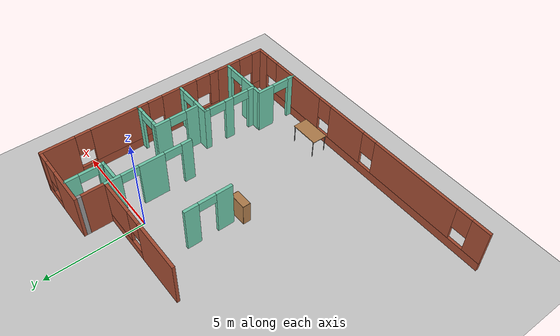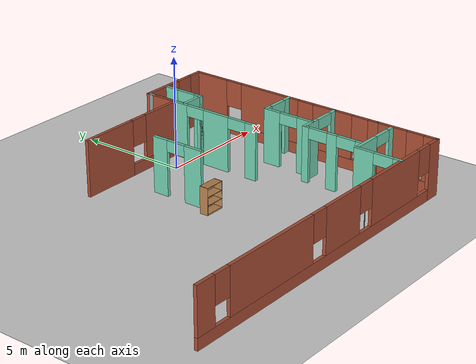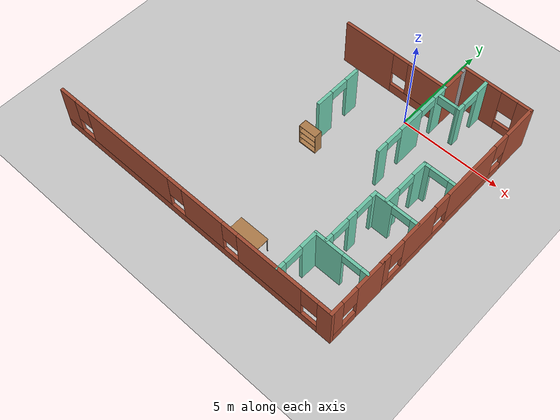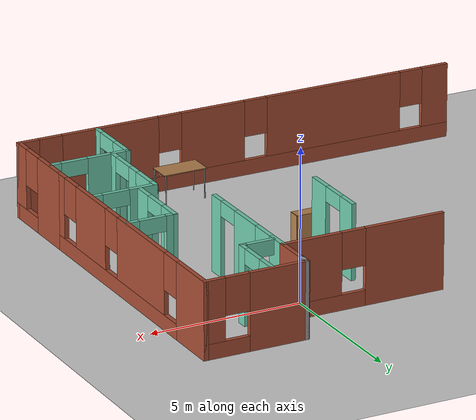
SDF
<sdf version="1.6">
 <world name="default">
  <model name="ground_plane">
   <static>1</static>
   <link name="link">
    <collision name="collision">
     <geometry><plane><normal>0 0 1</normal><size>100 100</size></plane></geometry>
     <surface>
      <contact><collide_bitmask>65535</collide_bitmask></contact>
      <friction><ode><mu>100</mu><mu2>50</mu2></ode></friction>
     </surface>
    </collision>
    <visual name="visual">
     <cast_shadows>0</cast_shadows>
     <geometry><plane><normal>0 0 1</normal><size>100 100</size></plane></geometry>
     <material>
      <script><uri>file://media/materials/scripts/gazebo.material</uri><name>Gazebo/Grey</name></script>
     </material>
    </visual>
   </link>
  </model>
  <model name="my_apartment">
   <pose>-3.10653 -3.79856 0 0 -0 0</pose>
   <link name="Wall_0">
    <pose>1.52918 4.775 0 0 -0 0</pose>
    <visual name="Wall_0_Visual_0">
     <pose>-1.4096 0 1.25 0 -0 0</pose>
     <geometry><box><size>2.6808 0.15 2.5</size></box></geometry>
     <material>
      <script><uri>file://media/materials/scripts/gazebo.material</uri><name>Gazebo/Bricks</name></script>
      <ambient>0.435294 0.796078 0.67451 1</ambient>
     </material>
     <meta><layer>0</layer></meta>
    </visual>
    <collision name="Wall_0_Collision_0">
     <geometry><box><size>2.6808 0.15 2.5</size></box></geometry>
     <pose>-1.4096 0 1.25 0 -0 0</pose>
    </collision>
    <visual name="Wall_0_Visual_1">
     <pose>1.3404 0 0.25 0 -0 0</pose>
     <geometry><box><size>2.8192 0.15 0.5</size></box></geometry>
     <material>
      <script><uri>file://media/materials/scripts/gazebo.material</uri><name>Gazebo/Bricks</name></script>
      <ambient>0.435294 0.796078 0.67451 1</ambient>
     </material>
     <meta><layer>0</layer></meta>
    </visual>
    <collision name="Wall_0_Collision_1">
     <geometry><box><size>2.8192 0.15 0.5</size></box></geometry>
     <pose>1.3404 0 0.25 0 -0 0</pose>
    </collision>
    <visual name="Wall_0_Visual_2">
     <pose>1.7404 0 1.5 0 -0 0</pose>
     <geometry><box><size>2.0192 0.15 2</size></box></geometry>
     <material>
      <script><uri>file://media/materials/scripts/gazebo.material</uri><name>Gazebo/Bricks</name></script>
      <ambient>0.435294 0.796078 0.67451 1</ambient>
     </material>
     <meta><layer>0</layer></meta>
    </visual>
    <collision name="Wall_0_Collision_2">
     <geometry><box><size>2.0192 0.15 2</size></box></geometry>
     <pose>1.7404 0 1.5 0 -0 0</pose>
    </collision>
    <visual name="Wall_0_Visual_3">
     <pose>0.330804 0 1.9 0 -0 0</pose>
     <geometry><box><size>0.8 0.15 1.2</size></box></geometry>
     <material>
      <script><uri>file://media/materials/scripts/gazebo.material</uri><name>Gazebo/Bricks</name></script>
      <ambient>0.435294 0.796078 0.67451 1</ambient>
     </material>
     <meta><layer>0</layer></meta>
    </visual>
    <collision name="Wall_0_Collision_3">
     <geometry><box><size>0.8 0.15 1.2</size></box></geometry>
     <pose>0.330804 0 1.9 0 -0 0</pose>
    </collision>
   </link>
   <link name="Wall_1">
    <collision name="Wall_1_Collision">
     <geometry><box><size>1.25 0.15 2.5</size></box></geometry>
     <pose>0 0 1.25 0 -0 0</pose>
    </collision>
    <visual name="Wall_1_Visual">
     <pose>0 0 1.25 0 -0 0</pose>
     <geometry><box><size>1.25 0.15 2.5</size></box></geometry>
     <material>
      <script><uri>file://media/materials/scripts/gazebo.material</uri><name>Gazebo/Bricks</name></script>
      <ambient>0.435294 0.796078 0.67451 1</ambient>
     </material>
     <meta><layer>0</layer></meta>
    </visual>
    <pose>4.20418 5.325 0 0 -0 1.5708</pose>
   </link>
   <link name="Wall_17">
    <pose>4.20435 2.59978 0 0 -0 1.57088</pose>
    <visual name="Wall_17_Visual_0">
     <pose>-1.96795 0 1.25 0 -0 0</pose>
     <geometry><box><size>0.564378 0.15 2.5</size></box></geometry>
     <material>
      <script><uri>file://media/materials/scripts/gazebo.material</uri><name>Gazebo/Grey</name></script>
      <ambient>0.435294 0.796078 0.67451 1</ambient>
     </material>
     <meta><layer>0</layer></meta>
    </visual>
    <collision name="Wall_17_Collision_0">
     <geometry><box><size>0.564378 0.15 2.5</size></box></geometry>
     <pose>-1.96795 0 1.25 0 -0 0</pose>
    </collision>
    <visual name="Wall_17_Visual_1">
     <pose>-0.125495 0 1.25 0 -0 0</pose>
     <geometry><box><size>1.32054 0.15 2.5</size></box></geometry>
     <material>
      <script><uri>file://media/materials/scripts/gazebo.material</uri><name>Gazebo/Grey</name></script>
      <ambient>0.435294 0.796078 0.67451 1</ambient>
     </material>
     <meta><layer>0</layer></meta>
    </visual>
    <collision name="Wall_17_Collision_1">
     <geometry><box><size>1.32054 0.15 2.5</size></box></geometry>
     <pose>-0.125495 0 1.25 0 -0 0</pose>
    </collision>
    <visual name="Wall_17_Visual_2">
     <pose>1.84246 0 1.25 0 -0 0</pose>
     <geometry><box><size>0.815367 0.15 2.5</size></box></geometry>
     <material>
      <script><uri>file://media/materials/scripts/gazebo.material</uri><name>Gazebo/Grey</name></script>
      <ambient>0.435294 0.796078 0.67451 1</ambient>
     </material>
     <meta><layer>0</layer></meta>
    </visual>
    <collision name="Wall_17_Collision_2">
     <geometry><box><size>0.815367 0.15 2.5</size></box></geometry>
     <pose>1.84246 0 1.25 0 -0 0</pose>
    </collision>
    <visual name="Wall_17_Visual_3">
     <pose>-1.23577 0 2.25 0 -0 0</pose>
     <geometry><box><size>0.9 0.15 0.5</size></box></geometry>
     <material>
      <script><uri>file://media/materials/scripts/gazebo.material</uri><name>Gazebo/Grey</name></script>
      <ambient>0.435294 0.796078 0.67451 1</ambient>
     </material>
     <meta><layer>0</layer></meta>
    </visual>
    <collision name="Wall_17_Collision_3">
     <geometry><box><size>0.9 0.15 0.5</size></box></geometry>
     <pose>-1.23577 0 2.25 0 -0 0</pose>
    </collision>
    <visual name="Wall_17_Visual_4">
     <pose>0.984776 0 2.25 0 -0 0</pose>
     <geometry><box><size>0.9 0.15 0.5</size></box></geometry>
     <material>
      <script><uri>file://media/materials/scripts/gazebo.material</uri><name>Gazebo/Grey</name></script>
      <ambient>0.435294 0.796078 0.67451 1</ambient>
     </material>
     <meta><layer>0</layer></meta>
    </visual>
    <collision name="Wall_17_Collision_4">
     <geometry><box><size>0.9 0.15 0.5</size></box></geometry>
     <pose>0.984776 0 2.25 0 -0 0</pose>
    </collision>
   </link>
   <link name="Wall_2">
    <collision name="Wall_2_Collision">
     <geometry><box><size>0.5 0.15 2.5</size></box></geometry>
     <pose>0 0 1.25 0 -0 0</pose>
    </collision>
    <visual name="Wall_2_Visual">
     <pose>0 0 1.25 0 -0 0</pose>
     <geometry><box><size>0.5 0.15 2.5</size></box></geometry>
     <material>
      <script><uri>file://media/materials/scripts/gazebo.material</uri><name>Gazebo/Grey</name></script>
      <ambient>1 1 1 1</ambient>
     </material>
     <meta><layer>0</layer></meta>
    </visual>
    <pose>4.20418 6.05 0 0 -0 1.5708</pose>
   </link>
   <link name="Wall_23">
    <pose>0.843373 1.74021 0 0 0 -1.5708</pose>
    <visual name="Wall_23_Visual_0">
     <pose>-0.881649 0 1.25 0 -0 0</pose>
     <geometry><box><size>0.736702 0.15 2.5</size></box></geometry>
     <material>
      <script><uri>file://media/materials/scripts/gazebo.material</uri><name>Gazebo/Grey</name></script>
      <ambient>0.435294 0.796078 0.67451 1</ambient>
     </material>
     <meta><layer>0</layer></meta>
    </visual>
    <collision name="Wall_23_Collision_0">
     <geometry><box><size>0.736702 0.15 2.5</size></box></geometry>
     <pose>-0.881649 0 1.25 0 -0 0</pose>
    </collision>
    <visual name="Wall_23_Visual_1">
     <pose>0.818351 0 1.25 0 -0 0</pose>
     <geometry><box><size>0.863298 0.15 2.5</size></box></geometry>
     <material>
      <script><uri>file://media/materials/scripts/gazebo.material</uri><name>Gazebo/Grey</name></script>
      <ambient>0.435294 0.796078 0.67451 1</ambient>
     </material>
     <meta><layer>0</layer></meta>
    </visual>
    <collision name="Wall_23_Collision_1">
     <geometry><box><size>0.863298 0.15 2.5</size></box></geometry>
     <pose>0.818351 0 1.25 0 -0 0</pose>
    </collision>
    <visual name="Wall_23_Visual_2">
     <pose>-0.063298 0 2.25 0 -0 0</pose>
     <geometry><box><size>0.9 0.15 0.5</size></box></geometry>
     <material>
      <script><uri>file://media/materials/scripts/gazebo.material</uri><name>Gazebo/Grey</name></script>
      <ambient>0.435294 0.796078 0.67451 1</ambient>
     </material>
     <meta><layer>0</layer></meta>
    </visual>
    <collision name="Wall_23_Collision_2">
     <geometry><box><size>0.9 0.15 0.5</size></box></geometry>
     <pose>-0.063298 0 2.25 0 -0 0</pose>
    </collision>
   </link>
   <link name="Wall_27">
    <pose>4.7693 4.27848 0 0 -0 0</pose>
    <visual name="Wall_27_Visual_0">
     <pose>-0.558063 0 1.25 0 -0 0</pose>
     <geometry><box><size>0.133873 0.15 2.5</size></box></geometry>
     <material>
      <script><uri>file://media/materials/scripts/gazebo.material</uri><name>Gazebo/Grey</name></script>
      <ambient>0.435294 0.796078 0.67451 1</ambient>
     </material>
     <meta><layer>0</layer></meta>
    </visual>
    <collision name="Wall_27_Collision_0">
     <geometry><box><size>0.133873 0.15 2.5</size></box></geometry>
     <pose>-0.558063 0 1.25 0 -0 0</pose>
    </collision>
    <visual name="Wall_27_Visual_1">
     <pose>0.516937 0 1.25 0 -0 0</pose>
     <geometry><box><size>0.216127 0.15 2.5</size></box></geometry>
     <material>
      <script><uri>file://media/materials/scripts/gazebo.material</uri><name>Gazebo/Grey</name></script>
      <ambient>0.435294 0.796078 0.67451 1</ambient>
     </material>
     <meta><layer>0</layer></meta>
    </visual>
    <collision name="Wall_27_Collision_1">
     <geometry><box><size>0.216127 0.15 2.5</size></box></geometry>
     <pose>0.516937 0 1.25 0 -0 0</pose>
    </collision>
    <visual name="Wall_27_Visual_2">
     <pose>-0.041127 0 2.25 0 -0 0</pose>
     <geometry><box><size>0.9 0.15 0.5</size></box></geometry>
     <material>
      <script><uri>file://media/materials/scripts/gazebo.material</uri><name>Gazebo/Grey</name></script>
      <ambient>0.435294 0.796078 0.67451 1</ambient>
     </material>
     <meta><layer>0</layer></meta>
    </visual>
    <collision name="Wall_27_Collision_2">
     <geometry><box><size>0.9 0.15 0.5</size></box></geometry>
     <pose>-0.041127 0 2.25 0 -0 0</pose>
    </collision>
   </link>
   <link name="Wall_28">
    <pose>5.3193 5.20348 0 0 -0 1.5708</pose>
    <visual name="Wall_28_Visual_0">
     <pose>-0.805845 0 1.25 0 -0 0</pose>
     <geometry><box><size>0.38831 0.15 2.5</size></box></geometry>
     <material>
      <script><uri>file://media/materials/scripts/gazebo.material</uri><name>Gazebo/Grey</name></script>
      <ambient>0.435294 0.796078 0.67451 1</ambient>
     </material>
     <meta><layer>0</layer></meta>
    </visual>
    <collision name="Wall_28_Collision_0">
     <geometry><box><size>0.38831 0.15 2.5</size></box></geometry>
     <pose>-0.805845 0 1.25 0 -0 0</pose>
    </collision>
    <visual name="Wall_28_Visual_1">
     <pose>0.644155 0 1.25 0 -0 0</pose>
     <geometry><box><size>0.71169 0.15 2.5</size></box></geometry>
     <material>
      <script><uri>file://media/materials/scripts/gazebo.material</uri><name>Gazebo/Grey</name></script>
      <ambient>0.435294 0.796078 0.67451 1</ambient>
     </material>
     <meta><layer>0</layer></meta>
    </visual>
    <collision name="Wall_28_Collision_1">
     <geometry><box><size>0.71169 0.15 2.5</size></box></geometry>
     <pose>0.644155 0 1.25 0 -0 0</pose>
    </collision>
    <visual name="Wall_28_Visual_2">
     <pose>-0.16169 0 2.25 0 -0 0</pose>
     <geometry><box><size>0.9 0.15 0.5</size></box></geometry>
     <material>
      <script><uri>file://media/materials/scripts/gazebo.material</uri><name>Gazebo/Grey</name></script>
      <ambient>0.435294 0.796078 0.67451 1</ambient>
     </material>
     <meta><layer>0</layer></meta>
    </visual>
    <collision name="Wall_28_Collision_2">
     <geometry><box><size>0.9 0.15 0.5</size></box></geometry>
     <pose>-0.16169 0 2.25 0 -0 0</pose>
    </collision>
   </link>
   <link name="Wall_3">
    <pose>5.87918 6.225 0 0 -0 0</pose>
    <visual name="Wall_3_Visual_0">
     <pose>-0.759972 0 1.25 0 -0 0</pose>
     <geometry><box><size>1.98006 0.15 2.5</size></box></geometry>
     <material>
      <script><uri>file://media/materials/scripts/gazebo.material</uri><name>Gazebo/Bricks</name></script>
      <ambient>0.435294 0.796078 0.67451 1</ambient>
     </material>
     <meta><layer>0</layer></meta>
    </visual>
    <collision name="Wall_3_Collision_0">
     <geometry><box><size>1.98006 0.15 2.5</size></box></geometry>
     <pose>-0.759972 0 1.25 0 -0 0</pose>
    </collision>
    <visual name="Wall_3_Visual_1">
     <pose>0.990028 0 0.25 0 -0 0</pose>
     <geometry><box><size>1.51994 0.15 0.5</size></box></geometry>
     <material>
      <script><uri>file://media/materials/scripts/gazebo.material</uri><name>Gazebo/Bricks</name></script>
      <ambient>0.435294 0.796078 0.67451 1</ambient>
     </material>
     <meta><layer>0</layer></meta>
    </visual>
    <collision name="Wall_3_Collision_1">
     <geometry><box><size>1.51994 0.15 0.5</size></box></geometry>
     <pose>0.990028 0 0.25 0 -0 0</pose>
    </collision>
    <visual name="Wall_3_Visual_2">
     <pose>1.39003 0 1.5 0 -0 0</pose>
     <geometry><box><size>0.719944 0.15 2</size></box></geometry>
     <material>
      <script><uri>file://media/materials/scripts/gazebo.material</uri><name>Gazebo/Bricks</name></script>
      <ambient>0.435294 0.796078 0.67451 1</ambient>
     </material>
     <meta><layer>0</layer></meta>
    </visual>
    <collision name="Wall_3_Collision_2">
     <geometry><box><size>0.719944 0.15 2</size></box></geometry>
     <pose>1.39003 0 1.5 0 -0 0</pose>
    </collision>
    <visual name="Wall_3_Visual_3">
     <pose>0.630056 0 1.9 0 -0 0</pose>
     <geometry><box><size>0.8 0.15 1.2</size></box></geometry>
     <material>
      <script><uri>file://media/materials/scripts/gazebo.material</uri><name>Gazebo/Bricks</name></script>
      <ambient>0.435294 0.796078 0.67451 1</ambient>
     </material>
     <meta><layer>0</layer></meta>
    </visual>
    <collision name="Wall_3_Collision_3">
     <geometry><box><size>0.8 0.15 1.2</size></box></geometry>
     <pose>0.630056 0 1.9 0 -0 0</pose>
    </collision>
   </link>
   <link name="Wall_30">
    <pose>4.89009 -5.17282 0 0 -0 1.5708</pose>
    <visual name="Wall_30_Visual_0">
     <pose>-0.907714 0 1.25 0 -0 0</pose>
     <geometry><box><size>0.434571 0.15 2.5</size></box></geometry>
     <material>
      <script><uri>file://media/materials/scripts/gazebo.material</uri><name>Gazebo/Grey</name></script>
      <ambient>0.435294 0.796078 0.67451 1</ambient>
     </material>
     <meta><layer>0</layer></meta>
    </visual>
    <collision name="Wall_30_Collision_0">
     <geometry><box><size>0.434571 0.15 2.5</size></box></geometry>
     <pose>-0.907714 0 1.25 0 -0 0</pose>
    </collision>
    <visual name="Wall_30_Visual_1">
     <pose>0.667286 0 1.25 0 -0 0</pose>
     <geometry><box><size>0.915429 0.15 2.5</size></box></geometry>
     <material>
      <script><uri>file://media/materials/scripts/gazebo.material</uri><name>Gazebo/Grey</name></script>
      <ambient>0.435294 0.796078 0.67451 1</ambient>
     </material>
     <meta><layer>0</layer></meta>
    </visual>
    <collision name="Wall_30_Collision_1">
     <geometry><box><size>0.915429 0.15 2.5</size></box></geometry>
     <pose>0.667286 0 1.25 0 -0 0</pose>
    </collision>
    <visual name="Wall_30_Visual_2">
     <pose>-0.240429 0 2.25 0 -0 0</pose>
     <geometry><box><size>0.9 0.15 0.5</size></box></geometry>
     <material>
      <script><uri>file://media/materials/scripts/gazebo.material</uri><name>Gazebo/Grey</name></script>
      <ambient>0.435294 0.796078 0.67451 1</ambient>
     </material>
     <meta><layer>0</layer></meta>
    </visual>
    <collision name="Wall_30_Collision_2">
     <geometry><box><size>0.9 0.15 0.5</size></box></geometry>
     <pose>-0.240429 0 2.25 0 -0 0</pose>
    </collision>
   </link>
   <link name="Wall_31">
    <pose>6.19009 -4.12282 0 0 -0 0</pose>
    <visual name="Wall_31_Visual_0">
     <pose>-0.648841 0 1.25 0 -0 0</pose>
     <geometry><box><size>1.45232 0.15 2.5</size></box></geometry>
     <material>
      <script><uri>file://media/materials/scripts/gazebo.material</uri><name>Gazebo/Grey</name></script>
      <ambient>0.435294 0.796078 0.67451 1</ambient>
     </material>
     <meta><layer>0</layer></meta>
    </visual>
    <collision name="Wall_31_Collision_0">
     <geometry><box><size>1.45232 0.15 2.5</size></box></geometry>
     <pose>-0.648841 0 1.25 0 -0 0</pose>
    </collision>
    <visual name="Wall_31_Visual_1">
     <pose>1.17616 0 1.25 0 -0 0</pose>
     <geometry><box><size>0.397682 0.15 2.5</size></box></geometry>
     <material>
      <script><uri>file://media/materials/scripts/gazebo.material</uri><name>Gazebo/Grey</name></script>
      <ambient>0.435294 0.796078 0.67451 1</ambient>
     </material>
     <meta><layer>0</layer></meta>
    </visual>
    <collision name="Wall_31_Collision_1">
     <geometry><box><size>0.397682 0.15 2.5</size></box></geometry>
     <pose>1.17616 0 1.25 0 -0 0</pose>
    </collision>
    <visual name="Wall_31_Visual_2">
     <pose>0.527318 0 2.25 0 -0 0</pose>
     <geometry><box><size>0.9 0.15 0.5</size></box></geometry>
     <material>
      <script><uri>file://media/materials/scripts/gazebo.material</uri><name>Gazebo/Grey</name></script>
      <ambient>0.435294 0.796078 0.67451 1</ambient>
     </material>
     <meta><layer>0</layer></meta>
    </visual>
    <collision name="Wall_31_Collision_2">
     <geometry><box><size>0.9 0.15 0.5</size></box></geometry>
     <pose>0.527318 0 2.25 0 -0 0</pose>
    </collision>
   </link>
   <link name="Wall_33">
    <pose>5.39896 -2.64667 0 0 -0 1.5708</pose>
    <visual name="Wall_33_Visual_0">
     <pose>-1.30584 0 1.25 0 -0 0</pose>
     <geometry><box><size>0.38831 0.15 2.5</size></box></geometry>
     <material>
      <script><uri>file://media/materials/scripts/gazebo.material</uri><name>Gazebo/Grey</name></script>
      <ambient>0.435294 0.796078 0.67451 1</ambient>
     </material>
     <meta><layer>0</layer></meta>
    </visual>
    <collision name="Wall_33_Collision_0">
     <geometry><box><size>0.38831 0.15 2.5</size></box></geometry>
     <pose>-1.30584 0 1.25 0 -0 0</pose>
    </collision>
    <visual name="Wall_33_Visual_1">
     <pose>0.032228 0 1.25 0 -0 0</pose>
     <geometry><box><size>0.487836 0.15 2.5</size></box></geometry>
     <material>
      <script><uri>file://media/materials/scripts/gazebo.material</uri><name>Gazebo/Grey</name></script>
      <ambient>0.435294 0.796078 0.67451 1</ambient>
     </material>
     <meta><layer>0</layer></meta>
    </visual>
    <collision name="Wall_33_Collision_1">
     <geometry><box><size>0.487836 0.15 2.5</size></box></geometry>
     <pose>0.032228 0 1.25 0 -0 0</pose>
    </collision>
    <visual name="Wall_33_Visual_2">
     <pose>1.33807 0 1.25 0 -0 0</pose>
     <geometry><box><size>0.323854 0.15 2.5</size></box></geometry>
     <material>
      <script><uri>file://media/materials/scripts/gazebo.material</uri><name>Gazebo/Grey</name></script>
      <ambient>0.435294 0.796078 0.67451 1</ambient>
     </material>
     <meta><layer>0</layer></meta>
    </visual>
    <collision name="Wall_33_Collision_2">
     <geometry><box><size>0.323854 0.15 2.5</size></box></geometry>
     <pose>1.33807 0 1.25 0 -0 0</pose>
    </collision>
    <visual name="Wall_33_Visual_3">
     <pose>-0.66169 0 2.25 0 -0 0</pose>
     <geometry><box><size>0.9 0.15 0.5</size></box></geometry>
     <material>
      <script><uri>file://media/materials/scripts/gazebo.material</uri><name>Gazebo/Grey</name></script>
      <ambient>0.435294 0.796078 0.67451 1</ambient>
     </material>
     <meta><layer>0</layer></meta>
    </visual>
    <collision name="Wall_33_Collision_3">
     <geometry><box><size>0.9 0.15 0.5</size></box></geometry>
     <pose>-0.66169 0 2.25 0 -0 0</pose>
    </collision>
    <visual name="Wall_33_Visual_4">
     <pose>0.726146 0 2.25 0 -0 0</pose>
     <geometry><box><size>0.9 0.15 0.5</size></box></geometry>
     <material>
      <script><uri>file://media/materials/scripts/gazebo.material</uri><name>Gazebo/Grey</name></script>
      <ambient>0.435294 0.796078 0.67451 1</ambient>
     </material>
     <meta><layer>0</layer></meta>
    </visual>
    <collision name="Wall_33_Collision_4">
     <geometry><box><size>0.9 0.15 0.5</size></box></geometry>
     <pose>0.726146 0 2.25 0 -0 0</pose>
    </collision>
   </link>
   <link name="Wall_34">
    <pose>6.44896 -1.22167 0 0 -0 0</pose>
    <visual name="Wall_34_Visual_0">
     <pose>-0.641712 0 1.25 0 -0 0</pose>
     <geometry><box><size>0.966575 0.15 2.5</size></box></geometry>
     <material>
      <script><uri>file://media/materials/scripts/gazebo.material</uri><name>Gazebo/Grey</name></script>
      <ambient>0.435294 0.796078 0.67451 1</ambient>
     </material>
     <meta><layer>0</layer></meta>
    </visual>
    <collision name="Wall_34_Collision_0">
     <geometry><box><size>0.966575 0.15 2.5</size></box></geometry>
     <pose>-0.641712 0 1.25 0 -0 0</pose>
    </collision>
    <visual name="Wall_34_Visual_1">
     <pose>0.933288 0 1.25 0 -0 0</pose>
     <geometry><box><size>0.383425 0.15 2.5</size></box></geometry>
     <material>
      <script><uri>file://media/materials/scripts/gazebo.material</uri><name>Gazebo/Grey</name></script>
      <ambient>0.435294 0.796078 0.67451 1</ambient>
     </material>
     <meta><layer>0</layer></meta>
    </visual>
    <collision name="Wall_34_Collision_1">
     <geometry><box><size>0.383425 0.15 2.5</size></box></geometry>
     <pose>0.933288 0 1.25 0 -0 0</pose>
    </collision>
    <visual name="Wall_34_Visual_2">
     <pose>0.291575 0 2.25 0 -0 0</pose>
     <geometry><box><size>0.9 0.15 0.5</size></box></geometry>
     <material>
      <script><uri>file://media/materials/scripts/gazebo.material</uri><name>Gazebo/Grey</name></script>
      <ambient>0.435294 0.796078 0.67451 1</ambient>
     </material>
     <meta><layer>0</layer></meta>
    </visual>
    <collision name="Wall_34_Collision_2">
     <geometry><box><size>0.9 0.15 0.5</size></box></geometry>
     <pose>0.291575 0 2.25 0 -0 0</pose>
    </collision>
   </link>
   <link name="Wall_36">
    <pose>5.9541 -0.005345 0 0 -0 1.5708</pose>
    <visual name="Wall_36_Visual_0">
     <pose>-0.859235 0 1.25 0 -0 0</pose>
     <geometry><box><size>0.78153 0.15 2.5</size></box></geometry>
     <material>
      <script><uri>file://media/materials/scripts/gazebo.material</uri><name>Gazebo/Grey</name></script>
      <ambient>0.435294 0.796078 0.67451 1</ambient>
     </material>
     <meta><layer>0</layer></meta>
    </visual>
    <collision name="Wall_36_Collision_0">
     <geometry><box><size>0.78153 0.15 2.5</size></box></geometry>
     <pose>-0.859235 0 1.25 0 -0 0</pose>
    </collision>
    <visual name="Wall_36_Visual_1">
     <pose>0.840765 0 1.25 0 -0 0</pose>
     <geometry><box><size>0.81847 0.15 2.5</size></box></geometry>
     <material>
      <script><uri>file://media/materials/scripts/gazebo.material</uri><name>Gazebo/Grey</name></script>
      <ambient>0.435294 0.796078 0.67451 1</ambient>
     </material>
     <meta><layer>0</layer></meta>
    </visual>
    <collision name="Wall_36_Collision_1">
     <geometry><box><size>0.81847 0.15 2.5</size></box></geometry>
     <pose>0.840765 0 1.25 0 -0 0</pose>
    </collision>
    <visual name="Wall_36_Visual_2">
     <pose>-0.01847 0 2.25 0 -0 0</pose>
     <geometry><box><size>0.9 0.15 0.5</size></box></geometry>
     <material>
      <script><uri>file://media/materials/scripts/gazebo.material</uri><name>Gazebo/Grey</name></script>
      <ambient>0.435294 0.796078 0.67451 1</ambient>
     </material>
     <meta><layer>0</layer></meta>
    </visual>
    <collision name="Wall_36_Collision_2">
     <geometry><box><size>0.9 0.15 0.5</size></box></geometry>
     <pose>-0.01847 0 2.25 0 -0 0</pose>
    </collision>
   </link>
   <link name="Wall_37">
    <pose>6.7541 1.16965 0 0 -0 0</pose>
    <visual name="Wall_37_Visual_0">
     <pose>-0.680845 0 1.25 0 -0 0</pose>
     <geometry><box><size>0.38831 0.15 2.5</size></box></geometry>
     <material>
      <script><uri>file://media/materials/scripts/gazebo.material</uri><name>Gazebo/Grey</name></script>
      <ambient>0.435294 0.796078 0.67451 1</ambient>
     </material>
     <meta><layer>0</layer></meta>
    </visual>
    <collision name="Wall_37_Collision_0">
     <geometry><box><size>0.38831 0.15 2.5</size></box></geometry>
     <pose>-0.680845 0 1.25 0 -0 0</pose>
    </collision>
    <visual name="Wall_37_Visual_1">
     <pose>0.644155 0 1.25 0 -0 0</pose>
     <geometry><box><size>0.46169 0.15 2.5</size></box></geometry>
     <material>
      <script><uri>file://media/materials/scripts/gazebo.material</uri><name>Gazebo/Grey</name></script>
      <ambient>0.435294 0.796078 0.67451 1</ambient>
     </material>
     <meta><layer>0</layer></meta>
    </visual>
    <collision name="Wall_37_Collision_1">
     <geometry><box><size>0.46169 0.15 2.5</size></box></geometry>
     <pose>0.644155 0 1.25 0 -0 0</pose>
    </collision>
    <visual name="Wall_37_Visual_2">
     <pose>-0.03669 0 2.25 0 -0 0</pose>
     <geometry><box><size>0.9 0.15 0.5</size></box></geometry>
     <material>
      <script><uri>file://media/materials/scripts/gazebo.material</uri><name>Gazebo/Grey</name></script>
      <ambient>0.435294 0.796078 0.67451 1</ambient>
     </material>
     <meta><layer>0</layer></meta>
    </visual>
    <collision name="Wall_37_Collision_2">
     <geometry><box><size>0.9 0.15 0.5</size></box></geometry>
     <pose>-0.03669 0 2.25 0 -0 0</pose>
    </collision>
   </link>
   <link name="Wall_4">
    <pose>7.55418 1.425 0 0 0 -1.5708</pose>
    <visual name="Wall_4_Visual_0">
     <pose>-3.99485 0 1.25 0 -0 0</pose>
     <geometry><box><size>1.76031 0.15 2.5</size></box></geometry>
     <material>
      <script><uri>file://media/materials/scripts/gazebo.material</uri><name>Gazebo/Bricks</name></script>
      <ambient>0.435294 0.796078 0.67451 1</ambient>
     </material>
     <meta><layer>0</layer></meta>
    </visual>
    <collision name="Wall_4_Collision_0">
     <geometry><box><size>1.76031 0.15 2.5</size></box></geometry>
     <pose>-3.99485 0 1.25 0 -0 0</pose>
    </collision>
    <visual name="Wall_4_Visual_1">
     <pose>0.880153 0 0.25 0 -0 0</pose>
     <geometry><box><size>7.98969 0.15 0.5</size></box></geometry>
     <material>
      <script><uri>file://media/materials/scripts/gazebo.material</uri><name>Gazebo/Bricks</name></script>
      <ambient>0.435294 0.796078 0.67451 1</ambient>
     </material>
     <meta><layer>0</layer></meta>
    </visual>
    <collision name="Wall_4_Collision_1">
     <geometry><box><size>7.98969 0.15 0.5</size></box></geometry>
     <pose>0.880153 0 0.25 0 -0 0</pose>
    </collision>
    <visual name="Wall_4_Visual_2">
     <pose>-0.771723 0 1.5 0 -0 0</pose>
     <geometry><box><size>3.08594 0.15 2</size></box></geometry>
     <material>
      <script><uri>file://media/materials/scripts/gazebo.material</uri><name>Gazebo/Bricks</name></script>
      <ambient>0.435294 0.796078 0.67451 1</ambient>
     </material>
     <meta><layer>0</layer></meta>
    </visual>
    <collision name="Wall_4_Collision_2">
     <geometry><box><size>3.08594 0.15 2</size></box></geometry>
     <pose>-0.771723 0 1.5 0 -0 0</pose>
    </collision>
    <visual name="Wall_4_Visual_3">
     <pose>2.57065 0 1.5 0 -0 0</pose>
     <geometry><box><size>1.9988 0.15 2</size></box></geometry>
     <material>
      <script><uri>file://media/materials/scripts/gazebo.material</uri><name>Gazebo/Bricks</name></script>
      <ambient>0.435294 0.796078 0.67451 1</ambient>
     </material>
     <meta><layer>0</layer></meta>
    </visual>
    <collision name="Wall_4_Collision_3">
     <geometry><box><size>1.9988 0.15 2</size></box></geometry>
     <pose>2.57065 0 1.5 0 -0 0</pose>
    </collision>
    <visual name="Wall_4_Visual_4">
     <pose>4.62253 0 1.5 0 -0 0</pose>
     <geometry><box><size>0.504949 0.15 2</size></box></geometry>
     <material>
      <script><uri>file://media/materials/scripts/gazebo.material</uri><name>Gazebo/Bricks</name></script>
      <ambient>0.435294 0.796078 0.67451 1</ambient>
     </material>
     <meta><layer>0</layer></meta>
    </visual>
    <collision name="Wall_4_Collision_4">
     <geometry><box><size>0.504949 0.15 2</size></box></geometry>
     <pose>4.62253 0 1.5 0 -0 0</pose>
    </collision>
    <visual name="Wall_4_Visual_5">
     <pose>-2.71469 0 1.9 0 -0 0</pose>
     <geometry><box><size>0.8 0.15 1.2</size></box></geometry>
     <material>
      <script><uri>file://media/materials/scripts/gazebo.material</uri><name>Gazebo/Bricks</name></script>
      <ambient>0.435294 0.796078 0.67451 1</ambient>
     </material>
     <meta><layer>0</layer></meta>
    </visual>
    <collision name="Wall_4_Collision_5">
     <geometry><box><size>0.8 0.15 1.2</size></box></geometry>
     <pose>-2.71469 0 1.9 0 -0 0</pose>
    </collision>
    <visual name="Wall_4_Visual_6">
     <pose>1.17125 0 1.9 0 -0 0</pose>
     <geometry><box><size>0.8 0.15 1.2</size></box></geometry>
     <material>
      <script><uri>file://media/materials/scripts/gazebo.material</uri><name>Gazebo/Bricks</name></script>
      <ambient>0.435294 0.796078 0.67451 1</ambient>
     </material>
     <meta><layer>0</layer></meta>
    </visual>
    <collision name="Wall_4_Collision_6">
     <geometry><box><size>0.8 0.15 1.2</size></box></geometry>
     <pose>1.17125 0 1.9 0 -0 0</pose>
    </collision>
    <visual name="Wall_4_Visual_7">
     <pose>3.97005 0 1.9 0 -0 0</pose>
     <geometry><box><size>0.8 0.15 1.2</size></box></geometry>
     <material>
      <script><uri>file://media/materials/scripts/gazebo.material</uri><name>Gazebo/Bricks</name></script>
      <ambient>0.435294 0.796078 0.67451 1</ambient>
     </material>
     <meta><layer>0</layer></meta>
    </visual>
    <collision name="Wall_4_Collision_7">
     <geometry><box><size>0.8 0.15 1.2</size></box></geometry>
     <pose>3.97005 0 1.9 0 -0 0</pose>
    </collision>
   </link>
   <link name="Wall_5">
    <pose>7.55418 -4.8 0 0 0 -1.5708</pose>
    <visual name="Wall_5_Visual_0">
     <pose>-0.735899 0 1.25 0 -0 0</pose>
     <geometry><box><size>1.5282 0.15 2.5</size></box></geometry>
     <material>
      <script><uri>file://media/materials/scripts/gazebo.material</uri><name>Gazebo/Bricks</name></script>
      <ambient>0.435294 0.796078 0.67451 1</ambient>
     </material>
     <meta><layer>0</layer></meta>
    </visual>
    <collision name="Wall_5_Collision_0">
     <geometry><box><size>1.5282 0.15 2.5</size></box></geometry>
     <pose>-0.735899 0 1.25 0 -0 0</pose>
    </collision>
    <visual name="Wall_5_Visual_1">
     <pose>0.764101 0 0.25 0 -0 0</pose>
     <geometry><box><size>1.4718 0.15 0.5</size></box></geometry>
     <material>
      <script><uri>file://media/materials/scripts/gazebo.material</uri><name>Gazebo/Bricks</name></script>
      <ambient>0.435294 0.796078 0.67451 1</ambient>
     </material>
     <meta><layer>0</layer></meta>
    </visual>
    <collision name="Wall_5_Collision_1">
     <geometry><box><size>1.4718 0.15 0.5</size></box></geometry>
     <pose>0.764101 0 0.25 0 -0 0</pose>
    </collision>
    <visual name="Wall_5_Visual_2">
     <pose>1.1641 0 1.5 0 -0 0</pose>
     <geometry><box><size>0.671798 0.15 2</size></box></geometry>
     <material>
      <script><uri>file://media/materials/scripts/gazebo.material</uri><name>Gazebo/Bricks</name></script>
      <ambient>0.435294 0.796078 0.67451 1</ambient>
     </material>
     <meta><layer>0</layer></meta>
    </visual>
    <collision name="Wall_5_Collision_2">
     <geometry><box><size>0.671798 0.15 2</size></box></geometry>
     <pose>1.1641 0 1.5 0 -0 0</pose>
    </collision>
    <visual name="Wall_5_Visual_3">
     <pose>0.428202 0 1.9 0 -0 0</pose>
     <geometry><box><size>0.8 0.15 1.2</size></box></geometry>
     <material>
      <script><uri>file://media/materials/scripts/gazebo.material</uri><name>Gazebo/Bricks</name></script>
      <ambient>0.435294 0.796078 0.67451 1</ambient>
     </material>
     <meta><layer>0</layer></meta>
    </visual>
    <collision name="Wall_5_Collision_3">
     <geometry><box><size>0.8 0.15 1.2</size></box></geometry>
     <pose>0.428202 0 1.9 0 -0 0</pose>
    </collision>
   </link>
   <link name="Wall_6">
    <pose>0.004176 -6.225 0 0 -0 3.14159</pose>
    <visual name="Wall_6_Visual_0">
     <pose>-7.26503 0 1.25 0 -0 0</pose>
     <geometry><box><size>0.719944 0.15 2.5</size></box></geometry>
     <material>
      <script><uri>file://media/materials/scripts/gazebo.material</uri><name>Gazebo/Bricks</name></script>
      <ambient>0.435294 0.796078 0.67451 1</ambient>
     </material>
     <meta><layer>0</layer></meta>
    </visual>
    <collision name="Wall_6_Collision_0">
     <geometry><box><size>0.719944 0.15 2.5</size></box></geometry>
     <pose>-7.26503 0 1.25 0 -0 0</pose>
    </collision>
    <visual name="Wall_6_Visual_1">
     <pose>0.359972 0 0.25 0 -0 0</pose>
     <geometry><box><size>14.5301 0.15 0.5</size></box></geometry>
     <material>
      <script><uri>file://media/materials/scripts/gazebo.material</uri><name>Gazebo/Bricks</name></script>
      <ambient>0.435294 0.796078 0.67451 1</ambient>
     </material>
     <meta><layer>0</layer></meta>
    </visual>
    <collision name="Wall_6_Collision_1">
     <geometry><box><size>14.5301 0.15 0.5</size></box></geometry>
     <pose>0.359972 0 0.25 0 -0 0</pose>
    </collision>
    <visual name="Wall_6_Visual_2">
     <pose>-4.43487 0 1.5 0 -0 0</pose>
     <geometry><box><size>3.34038 0.15 2</size></box></geometry>
     <material>
      <script><uri>file://media/materials/scripts/gazebo.material</uri><name>Gazebo/Bricks</name></script>
      <ambient>0.435294 0.796078 0.67451 1</ambient>
     </material>
     <meta><layer>0</layer></meta>
    </visual>
    <collision name="Wall_6_Collision_2">
     <geometry><box><size>3.34038 0.15 2</size></box></geometry>
     <pose>-4.43487 0 1.5 0 -0 0</pose>
    </collision>
    <visual name="Wall_6_Visual_3">
     <pose>-0.849622 0 1.5 0 -0 0</pose>
     <geometry><box><size>2.23011 0.15 2</size></box></geometry>
     <material>
      <script><uri>file://media/materials/scripts/gazebo.material</uri><name>Gazebo/Bricks</name></script>
      <ambient>0.435294 0.796078 0.67451 1</ambient>
     </material>
     <meta><layer>0</layer></meta>
    </visual>
    <collision name="Wall_6_Collision_3">
     <geometry><box><size>2.23011 0.15 2</size></box></geometry>
     <pose>-0.849622 0 1.5 0 -0 0</pose>
    </collision>
    <visual name="Wall_6_Visual_4">
     <pose>3.4758 0 1.5 0 -0 0</pose>
     <geometry><box><size>4.82074 0.15 2</size></box></geometry>
     <material>
      <script><uri>file://media/materials/scripts/gazebo.material</uri><name>Gazebo/Bricks</name></script>
      <ambient>0.435294 0.796078 0.67451 1</ambient>
     </material>
     <meta><layer>0</layer></meta>
    </visual>
    <collision name="Wall_6_Collision_4">
     <geometry><box><size>4.82074 0.15 2</size></box></geometry>
     <pose>3.4758 0 1.5 0 -0 0</pose>
    </collision>
    <visual name="Wall_6_Visual_5">
     <pose>7.15559 0 1.5 0 -0 0</pose>
     <geometry><box><size>0.93883 0.15 2</size></box></geometry>
     <material>
      <script><uri>file://media/materials/scripts/gazebo.material</uri><name>Gazebo/Bricks</name></script>
      <ambient>0.435294 0.796078 0.67451 1</ambient>
     </material>
     <meta><layer>0</layer></meta>
    </visual>
    <collision name="Wall_6_Collision_5">
     <geometry><box><size>0.93883 0.15 2</size></box></geometry>
     <pose>7.15559 0 1.5 0 -0 0</pose>
    </collision>
    <visual name="Wall_6_Visual_6">
     <pose>-6.50506 0 1.9 0 -0 0</pose>
     <geometry><box><size>0.8 0.15 1.2</size></box></geometry>
     <material>
      <script><uri>file://media/materials/scripts/gazebo.material</uri><name>Gazebo/Bricks</name></script>
      <ambient>0.435294 0.796078 0.67451 1</ambient>
     </material>
     <meta><layer>0</layer></meta>
    </visual>
    <collision name="Wall_6_Collision_6">
     <geometry><box><size>0.8 0.15 1.2</size></box></geometry>
     <pose>-6.50506 0 1.9 0 -0 0</pose>
    </collision>
    <visual name="Wall_6_Visual_7">
     <pose>-2.36468 0 1.9 0 -0 0</pose>
     <geometry><box><size>0.8 0.15 1.2</size></box></geometry>
     <material>
      <script><uri>file://media/materials/scripts/gazebo.material</uri><name>Gazebo/Bricks</name></script>
      <ambient>0.435294 0.796078 0.67451 1</ambient>
     </material>
     <meta><layer>0</layer></meta>
    </visual>
    <collision name="Wall_6_Collision_7">
     <geometry><box><size>0.8 0.15 1.2</size></box></geometry>
     <pose>-2.36468 0 1.9 0 -0 0</pose>
    </collision>
    <visual name="Wall_6_Visual_8">
     <pose>0.665433 0 1.9 0 -0 0</pose>
     <geometry><box><size>0.8 0.15 1.2</size></box></geometry>
     <material>
      <script><uri>file://media/materials/scripts/gazebo.material</uri><name>Gazebo/Bricks</name></script>
      <ambient>0.435294 0.796078 0.67451 1</ambient>
     </material>
     <meta><layer>0</layer></meta>
    </visual>
    <collision name="Wall_6_Collision_8">
     <geometry><box><size>0.8 0.15 1.2</size></box></geometry>
     <pose>0.665433 0 1.9 0 -0 0</pose>
    </collision>
    <visual name="Wall_6_Visual_9">
     <pose>6.28617 0 1.9 0 -0 0</pose>
     <geometry><box><size>0.8 0.15 1.2</size></box></geometry>
     <material>
      <script><uri>file://media/materials/scripts/gazebo.material</uri><name>Gazebo/Bricks</name></script>
      <ambient>0.435294 0.796078 0.67451 1</ambient>
     </material>
     <meta><layer>0</layer></meta>
    </visual>
    <collision name="Wall_6_Collision_9">
     <geometry><box><size>0.8 0.15 1.2</size></box></geometry>
     <pose>6.28617 0 1.9 0 -0 0</pose>
    </collision>
   </link>
   <static>1</static>
  </model>
  <model name="bookshelf">
   <static>1</static>
   <link name="link">
    <inertial><mass>1</mass></inertial>
    <collision name="back">
     <pose>0 0.005 0.6 0 -0 0</pose>
     <geometry><box><size>0.9 0.01 1.2</size></box></geometry>
    </collision>
    <visual name="visual1">
     <pose>0 0.005 0.6 0 -0 0</pose>
     <geometry><box><size>0.9 0.01 1.2</size></box></geometry>
     <material>
      <script><uri>file://media/materials/scripts/gazebo.material</uri><name>Gazebo/Wood</name></script>
     </material>
    </visual>
    <collision name="left_side">
     <pose>0.45 -0.195 0.6 0 -0 0</pose>
     <geometry><box><size>0.02 0.4 1.2</size></box></geometry>
    </collision>
    <visual name="visual2">
     <pose>0.45 -0.195 0.6 0 -0 0</pose>
     <geometry><box><size>0.02 0.4 1.2</size></box></geometry>
     <material>
      <script><uri>file://media/materials/scripts/gazebo.material</uri><name>Gazebo/Wood</name></script>
     </material>
    </visual>
    <collision name="right_side">
     <pose>-0.45 -0.195 0.6 0 -0 0</pose>
     <geometry><box><size>0.02 0.4 1.2</size></box></geometry>
    </collision>
    <visual name="visual3">
     <pose>-0.45 -0.195 0.6 0 -0 0</pose>
     <geometry><box><size>0.02 0.4 1.2</size></box></geometry>
     <material>
      <script><uri>file://media/materials/scripts/gazebo.material</uri><name>Gazebo/Wood</name></script>
     </material>
    </visual>
    <collision name="bottom">
     <pose>0 -0.195 0.03 0 -0 0</pose>
     <geometry><box><size>0.88 0.4 0.06</size></box></geometry>
    </collision>
    <visual name="visual4">
     <pose>0 -0.195 0.03 0 -0 0</pose>
     <geometry><box><size>0.88 0.4 0.06</size></box></geometry>
     <material>
      <script><uri>file://media/materials/scripts/gazebo.material</uri><name>Gazebo/Wood</name></script>
     </material>
    </visual>
    <collision name="top">
     <pose>0 -0.195 1.19 0 -0 0</pose>
     <geometry><box><size>0.88 0.4 0.02</size></box></geometry>
    </collision>
    <visual name="visual5">
     <pose>0 -0.195 1.19 0 -0 0</pose>
     <geometry><box><size>0.88 0.4 0.02</size></box></geometry>
     <material>
      <script><uri>file://media/materials/scripts/gazebo.material</uri><name>Gazebo/Wood</name></script>
     </material>
    </visual>
    <collision name="low_shelf">
     <pose>0 -0.195 0.43 0 -0 0</pose>
     <geometry><box><size>0.88 0.4 0.02</size></box></geometry>
    </collision>
    <visual name="visual6">
     <pose>0 -0.195 0.43 0 -0 0</pose>
     <geometry><box><size>0.88 0.4 0.02</size></box></geometry>
     <material>
      <script><uri>file://media/materials/scripts/gazebo.material</uri><name>Gazebo/Wood</name></script>
     </material>
    </visual>
    <collision name="high_shelf">
     <pose>0 -0.195 0.8 0 -0 0</pose>
     <geometry><box><size>0.88 0.4 0.02</size></box></geometry>
    </collision>
    <visual name="visual7">
     <pose>0 -0.195 0.8 0 -0 0</pose>
     <geometry><box><size>0.88 0.4 0.02</size></box></geometry>
     <material>
      <script><uri>file://media/materials/scripts/gazebo.material</uri><name>Gazebo/Wood</name></script>
     </material>
    </visual>
   </link>
   <pose>-2.25669 -3.55605 0 0 -0 0</pose>
  </model>
  <model name="table">
   <static>1</static>
   <link name="link">
    <collision name="surface">
     <pose>0 0 1 0 -0 0</pose>
     <geometry><box><size>1.5 0.8 0.03</size></box></geometry>
     <surface><friction><ode><mu>0.6</mu><mu2>0.6</mu2></ode></friction></surface>
    </collision>
    <visual name="visual1">
     <pose>0 0 1 0 -0 0</pose>
     <geometry><box><size>1.5 0.8 0.03</size></box></geometry>
     <material>
      <script><uri>file://media/materials/scripts/gazebo.material</uri><name>Gazebo/Wood</name></script>
     </material>
    </visual>
    <collision name="front_left_leg">
     <pose>0.68 0.38 0.5 0 -0 0</pose>
     <geometry><cylinder><radius>0.02</radius><length>1</length></cylinder></geometry>
    </collision>
    <visual name="front_left_leg">
     <pose>0.68 0.38 0.5 0 -0 0</pose>
     <geometry><cylinder><radius>0.02</radius><length>1</length></cylinder></geometry>
     <material>
      <script><uri>file://media/materials/scripts/gazebo.material</uri><name>Gazebo/Grey</name></script>
     </material>
    </visual>
    <collision name="front_right_leg">
     <pose>0.68 -0.38 0.5 0 -0 0</pose>
     <geometry><cylinder><radius>0.02</radius><length>1</length></cylinder></geometry>
    </collision>
    <visual name="front_right_leg">
     <pose>0.68 -0.38 0.5 0 -0 0</pose>
     <geometry><cylinder><radius>0.02</radius><length>1</length></cylinder></geometry>
     <material>
      <script><uri>file://media/materials/scripts/gazebo.material</uri><name>Gazebo/Grey</name></script>
     </material>
    </visual>
    <collision name="back_right_leg">
     <pose>-0.68 -0.38 0.5 0 -0 0</pose>
     <geometry><cylinder><radius>0.02</radius><length>1</length></cylinder></geometry>
    </collision>
    <visual name="back_right_leg">
     <pose>-0.68 -0.38 0.5 0 -0 0</pose>
     <geometry><cylinder><radius>0.02</radius><length>1</length></cylinder></geometry>
     <material>
      <script><uri>file://media/materials/scripts/gazebo.material</uri><name>Gazebo/Grey</name></script>
     </material>
    </visual>
    <collision name="back_left_leg">
     <pose>-0.68 0.38 0.5 0 -0 0</pose>
     <geometry><cylinder><radius>0.02</radius><length>1</length></cylinder></geometry>
    </collision>
    <visual name="back_left_leg">
     <pose>-0.68 0.38 0.5 0 -0 0</pose>
     <geometry><cylinder><radius>0.02</radius><length>1</length></cylinder></geometry>
     <material>
      <script><uri>file://media/materials/scripts/gazebo.material</uri><name>Gazebo/Grey</name></script>
     </material>
    </visual>
   </link>
   <pose>-0.679169 -9.18946 0 0 -0 0</pose>
  </model>
 </world>
</sdf>
